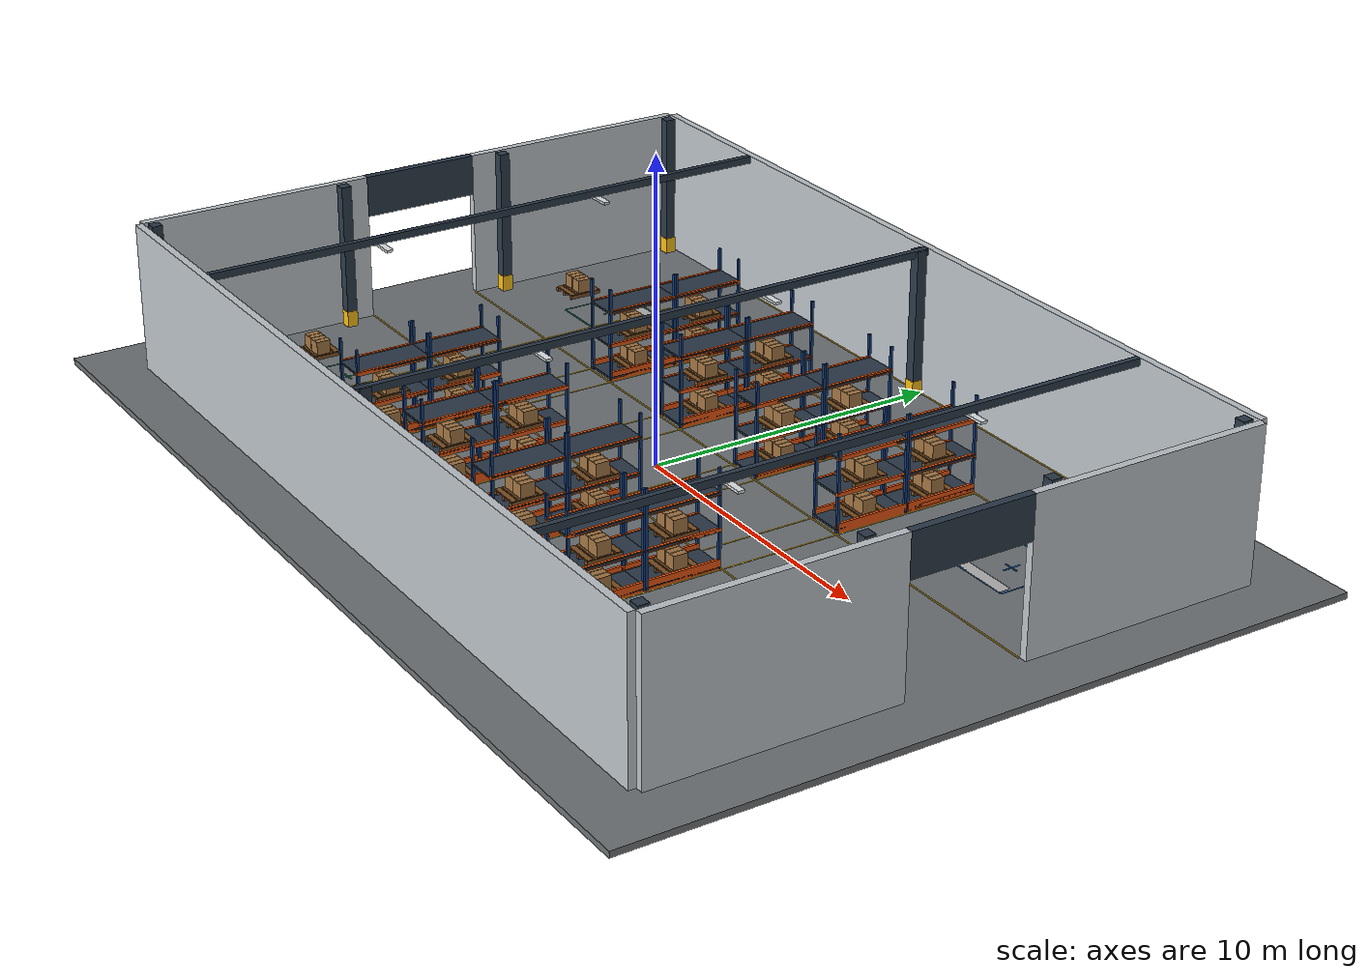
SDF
<?xml version="1.0"?>
<sdf version="1.9">
  <model name="wh_building">
    <static>true</static>
    <link name="structure">
      <visual name="floor_visual">
        <pose>0 0 -0.1 0 0 0</pose>
        <geometry>
          <box>
            <size>34 24 0.2</size>
          </box>
        </geometry>
        <material>
          <ambient>0.44 0.46 0.47 1</ambient>
          <diffuse>0.44 0.46 0.47 1</diffuse>
          <specular>0.06 0.06 0.06 1</specular>
        </material>
      </visual>
      <collision name="floor_collision">
        <pose>0 0 -0.1 0 0 0</pose>
        <geometry>
          <box>
            <size>34 24 0.2</size>
          </box>
        </geometry>
      </collision>
      <visual name="west_wall_0_visual">
        <pose>-15.125 -6 2.5 0 0 0</pose>
        <geometry>
          <box>
            <size>0.25 8 5</size>
          </box>
        </geometry>
        <material>
          <ambient>0.76 0.79 0.81 1</ambient>
          <diffuse>0.76 0.79 0.81 1</diffuse>
          <specular>0.06 0.06 0.06 1</specular>
        </material>
      </visual>
      <collision name="west_wall_0_collision">
        <pose>-15.125 -6 2.5 0 0 0</pose>
        <geometry>
          <box>
            <size>0.25 8 5</size>
          </box>
        </geometry>
      </collision>
      <visual name="receiving_door_lintel_visual">
        <pose>-15.125 0 4.3 0 0 0</pose>
        <geometry>
          <box>
            <size>0.25 4 1.4</size>
          </box>
        </geometry>
        <material>
          <ambient>0.17 0.23 0.29 1</ambient>
          <diffuse>0.17 0.23 0.29 1</diffuse>
          <specular>0.06 0.06 0.06 1</specular>
        </material>
      </visual>
      <collision name="receiving_door_lintel_collision">
        <pose>-15.125 0 4.3 0 0 0</pose>
        <geometry>
          <box>
            <size>0.25 4 1.4</size>
          </box>
        </geometry>
      </collision>
      <visual name="west_wall_1_visual">
        <pose>-15.125 6 2.5 0 0 0</pose>
        <geometry>
          <box>
            <size>0.25 8 5</size>
          </box>
        </geometry>
        <material>
          <ambient>0.76 0.79 0.81 1</ambient>
          <diffuse>0.76 0.79 0.81 1</diffuse>
          <specular>0.06 0.06 0.06 1</specular>
        </material>
      </visual>
      <collision name="west_wall_1_collision">
        <pose>-15.125 6 2.5 0 0 0</pose>
        <geometry>
          <box>
            <size>0.25 8 5</size>
          </box>
        </geometry>
      </collision>
      <visual name="east_wall_0_visual">
        <pose>15.125 -6 2.5 0 0 0</pose>
        <geometry>
          <box>
            <size>0.25 8 5</size>
          </box>
        </geometry>
        <material>
          <ambient>0.76 0.79 0.81 1</ambient>
          <diffuse>0.76 0.79 0.81 1</diffuse>
          <specular>0.06 0.06 0.06 1</specular>
        </material>
      </visual>
      <collision name="east_wall_0_collision">
        <pose>15.125 -6 2.5 0 0 0</pose>
        <geometry>
          <box>
            <size>0.25 8 5</size>
          </box>
        </geometry>
      </collision>
      <visual name="dispatch_door_lintel_visual">
        <pose>15.125 0 4.3 0 0 0</pose>
        <geometry>
          <box>
            <size>0.25 4 1.4</size>
          </box>
        </geometry>
        <material>
          <ambient>0.17 0.23 0.29 1</ambient>
          <diffuse>0.17 0.23 0.29 1</diffuse>
          <specular>0.06 0.06 0.06 1</specular>
        </material>
      </visual>
      <collision name="dispatch_door_lintel_collision">
        <pose>15.125 0 4.3 0 0 0</pose>
        <geometry>
          <box>
            <size>0.25 4 1.4</size>
          </box>
        </geometry>
      </collision>
      <visual name="east_wall_1_visual">
        <pose>15.125 6 2.5 0 0 0</pose>
        <geometry>
          <box>
            <size>0.25 8 5</size>
          </box>
        </geometry>
        <material>
          <ambient>0.76 0.79 0.81 1</ambient>
          <diffuse>0.76 0.79 0.81 1</diffuse>
          <specular>0.06 0.06 0.06 1</specular>
        </material>
      </visual>
      <collision name="east_wall_1_collision">
        <pose>15.125 6 2.5 0 0 0</pose>
        <geometry>
          <box>
            <size>0.25 8 5</size>
          </box>
        </geometry>
      </collision>
      <visual name="north_wall_0_visual">
        <pose>0 10.125 2.5 0 0 0</pose>
        <geometry>
          <box>
            <size>30 0.25 5</size>
          </box>
        </geometry>
        <material>
          <ambient>0.76 0.79 0.81 1</ambient>
          <diffuse>0.76 0.79 0.81 1</diffuse>
          <specular>0.06 0.06 0.06 1</specular>
        </material>
      </visual>
      <collision name="north_wall_0_collision">
        <pose>0 10.125 2.5 0 0 0</pose>
        <geometry>
          <box>
            <size>30 0.25 5</size>
          </box>
        </geometry>
      </collision>
      <visual name="south_wall_0_visual">
        <pose>0 -10.125 2.5 0 0 0</pose>
        <geometry>
          <box>
            <size>30 0.25 5</size>
          </box>
        </geometry>
        <material>
          <ambient>0.76 0.79 0.81 1</ambient>
          <diffuse>0.76 0.79 0.81 1</diffuse>
          <specular>0.06 0.06 0.06 1</specular>
        </material>
      </visual>
      <collision name="south_wall_0_collision">
        <pose>0 -10.125 2.5 0 0 0</pose>
        <geometry>
          <box>
            <size>30 0.25 5</size>
          </box>
        </geometry>
      </collision>
      <visual name="pillar_00_visual">
        <pose>-14.7 -9.7 2.5 0 0 0</pose>
        <geometry>
          <box>
            <size>0.35 0.35 5</size>
          </box>
        </geometry>
        <material>
          <ambient>0.17 0.23 0.29 1</ambient>
          <diffuse>0.17 0.23 0.29 1</diffuse>
          <specular>0.06 0.06 0.06 1</specular>
        </material>
      </visual>
      <collision name="pillar_00_collision">
        <pose>-14.7 -9.7 2.5 0 0 0</pose>
        <geometry>
          <box>
            <size>0.35 0.35 5</size>
          </box>
        </geometry>
      </collision>
      <visual name="pillar_guard_00_visual">
        <pose>-14.7 -9.7 0.275 0 0 0</pose>
        <geometry>
          <box>
            <size>0.365 0.365 0.55</size>
          </box>
        </geometry>
        <material>
          <ambient>1 0.76 0.08 1</ambient>
          <diffuse>1 0.76 0.08 1</diffuse>
          <specular>0.06 0.06 0.06 1</specular>
        </material>
      </visual>
      <visual name="pillar_01_visual">
        <pose>-14.7 -3 2.5 0 0 0</pose>
        <geometry>
          <box>
            <size>0.35 0.35 5</size>
          </box>
        </geometry>
        <material>
          <ambient>0.17 0.23 0.29 1</ambient>
          <diffuse>0.17 0.23 0.29 1</diffuse>
          <specular>0.06 0.06 0.06 1</specular>
        </material>
      </visual>
      <collision name="pillar_01_collision">
        <pose>-14.7 -3 2.5 0 0 0</pose>
        <geometry>
          <box>
            <size>0.35 0.35 5</size>
          </box>
        </geometry>
      </collision>
      <visual name="pillar_guard_01_visual">
        <pose>-14.7 -3 0.275 0 0 0</pose>
        <geometry>
          <box>
            <size>0.365 0.365 0.55</size>
          </box>
        </geometry>
        <material>
          <ambient>1 0.76 0.08 1</ambient>
          <diffuse>1 0.76 0.08 1</diffuse>
          <specular>0.06 0.06 0.06 1</specular>
        </material>
      </visual>
      <visual name="pillar_02_visual">
        <pose>-14.7 3 2.5 0 0 0</pose>
        <geometry>
          <box>
            <size>0.35 0.35 5</size>
          </box>
        </geometry>
        <material>
          <ambient>0.17 0.23 0.29 1</ambient>
          <diffuse>0.17 0.23 0.29 1</diffuse>
          <specular>0.06 0.06 0.06 1</specular>
        </material>
      </visual>
      <collision name="pillar_02_collision">
        <pose>-14.7 3 2.5 0 0 0</pose>
        <geometry>
          <box>
            <size>0.35 0.35 5</size>
          </box>
        </geometry>
      </collision>
      <visual name="pillar_guard_02_visual">
        <pose>-14.7 3 0.275 0 0 0</pose>
        <geometry>
          <box>
            <size>0.365 0.365 0.55</size>
          </box>
        </geometry>
        <material>
          <ambient>1 0.76 0.08 1</ambient>
          <diffuse>1 0.76 0.08 1</diffuse>
          <specular>0.06 0.06 0.06 1</specular>
        </material>
      </visual>
      <visual name="pillar_03_visual">
        <pose>-14.7 9.7 2.5 0 0 0</pose>
        <geometry>
          <box>
            <size>0.35 0.35 5</size>
          </box>
        </geometry>
        <material>
          <ambient>0.17 0.23 0.29 1</ambient>
          <diffuse>0.17 0.23 0.29 1</diffuse>
          <specular>0.06 0.06 0.06 1</specular>
        </material>
      </visual>
      <collision name="pillar_03_collision">
        <pose>-14.7 9.7 2.5 0 0 0</pose>
        <geometry>
          <box>
            <size>0.35 0.35 5</size>
          </box>
        </geometry>
      </collision>
      <visual name="pillar_guard_03_visual">
        <pose>-14.7 9.7 0.275 0 0 0</pose>
        <geometry>
          <box>
            <size>0.365 0.365 0.55</size>
          </box>
        </geometry>
        <material>
          <ambient>1 0.76 0.08 1</ambient>
          <diffuse>1 0.76 0.08 1</diffuse>
          <specular>0.06 0.06 0.06 1</specular>
        </material>
      </visual>
      <visual name="pillar_04_visual">
        <pose>0 -9.7 2.5 0 0 0</pose>
        <geometry>
          <box>
            <size>0.35 0.35 5</size>
          </box>
        </geometry>
        <material>
          <ambient>0.17 0.23 0.29 1</ambient>
          <diffuse>0.17 0.23 0.29 1</diffuse>
          <specular>0.06 0.06 0.06 1</specular>
        </material>
      </visual>
      <collision name="pillar_04_collision">
        <pose>0 -9.7 2.5 0 0 0</pose>
        <geometry>
          <box>
            <size>0.35 0.35 5</size>
          </box>
        </geometry>
      </collision>
      <visual name="pillar_guard_04_visual">
        <pose>0 -9.7 0.275 0 0 0</pose>
        <geometry>
          <box>
            <size>0.365 0.365 0.55</size>
          </box>
        </geometry>
        <material>
          <ambient>1 0.76 0.08 1</ambient>
          <diffuse>1 0.76 0.08 1</diffuse>
          <specular>0.06 0.06 0.06 1</specular>
        </material>
      </visual>
      <visual name="pillar_05_visual">
        <pose>0 9.7 2.5 0 0 0</pose>
        <geometry>
          <box>
            <size>0.35 0.35 5</size>
          </box>
        </geometry>
        <material>
          <ambient>0.17 0.23 0.29 1</ambient>
          <diffuse>0.17 0.23 0.29 1</diffuse>
          <specular>0.06 0.06 0.06 1</specular>
        </material>
      </visual>
      <collision name="pillar_05_collision">
        <pose>0 9.7 2.5 0 0 0</pose>
        <geometry>
          <box>
            <size>0.35 0.35 5</size>
          </box>
        </geometry>
      </collision>
      <visual name="pillar_guard_05_visual">
        <pose>0 9.7 0.275 0 0 0</pose>
        <geometry>
          <box>
            <size>0.365 0.365 0.55</size>
          </box>
        </geometry>
        <material>
          <ambient>1 0.76 0.08 1</ambient>
          <diffuse>1 0.76 0.08 1</diffuse>
          <specular>0.06 0.06 0.06 1</specular>
        </material>
      </visual>
      <visual name="pillar_06_visual">
        <pose>14.7 -9.7 2.5 0 0 0</pose>
        <geometry>
          <box>
            <size>0.35 0.35 5</size>
          </box>
        </geometry>
        <material>
          <ambient>0.17 0.23 0.29 1</ambient>
          <diffuse>0.17 0.23 0.29 1</diffuse>
          <specular>0.06 0.06 0.06 1</specular>
        </material>
      </visual>
      <collision name="pillar_06_collision">
        <pose>14.7 -9.7 2.5 0 0 0</pose>
        <geometry>
          <box>
            <size>0.35 0.35 5</size>
          </box>
        </geometry>
      </collision>
      <visual name="pillar_guard_06_visual">
        <pose>14.7 -9.7 0.275 0 0 0</pose>
        <geometry>
          <box>
            <size>0.365 0.365 0.55</size>
          </box>
        </geometry>
        <material>
          <ambient>1 0.76 0.08 1</ambient>
          <diffuse>1 0.76 0.08 1</diffuse>
          <specular>0.06 0.06 0.06 1</specular>
        </material>
      </visual>
      <visual name="pillar_07_visual">
        <pose>14.7 -3 2.5 0 0 0</pose>
        <geometry>
          <box>
            <size>0.35 0.35 5</size>
          </box>
        </geometry>
        <material>
          <ambient>0.17 0.23 0.29 1</ambient>
          <diffuse>0.17 0.23 0.29 1</diffuse>
          <specular>0.06 0.06 0.06 1</specular>
        </material>
      </visual>
      <collision name="pillar_07_collision">
        <pose>14.7 -3 2.5 0 0 0</pose>
        <geometry>
          <box>
            <size>0.35 0.35 5</size>
          </box>
        </geometry>
      </collision>
      <visual name="pillar_guard_07_visual">
        <pose>14.7 -3 0.275 0 0 0</pose>
        <geometry>
          <box>
            <size>0.365 0.365 0.55</size>
          </box>
        </geometry>
        <material>
          <ambient>1 0.76 0.08 1</ambient>
          <diffuse>1 0.76 0.08 1</diffuse>
          <specular>0.06 0.06 0.06 1</specular>
        </material>
      </visual>
      <visual name="pillar_08_visual">
        <pose>14.7 3 2.5 0 0 0</pose>
        <geometry>
          <box>
            <size>0.35 0.35 5</size>
          </box>
        </geometry>
        <material>
          <ambient>0.17 0.23 0.29 1</ambient>
          <diffuse>0.17 0.23 0.29 1</diffuse>
          <specular>0.06 0.06 0.06 1</specular>
        </material>
      </visual>
      <collision name="pillar_08_collision">
        <pose>14.7 3 2.5 0 0 0</pose>
        <geometry>
          <box>
            <size>0.35 0.35 5</size>
          </box>
        </geometry>
      </collision>
      <visual name="pillar_guard_08_visual">
        <pose>14.7 3 0.275 0 0 0</pose>
        <geometry>
          <box>
            <size>0.365 0.365 0.55</size>
          </box>
        </geometry>
        <material>
          <ambient>1 0.76 0.08 1</ambient>
          <diffuse>1 0.76 0.08 1</diffuse>
          <specular>0.06 0.06 0.06 1</specular>
        </material>
      </visual>
      <visual name="pillar_09_visual">
        <pose>14.7 9.7 2.5 0 0 0</pose>
        <geometry>
          <box>
            <size>0.35 0.35 5</size>
          </box>
        </geometry>
        <material>
          <ambient>0.17 0.23 0.29 1</ambient>
          <diffuse>0.17 0.23 0.29 1</diffuse>
          <specular>0.06 0.06 0.06 1</specular>
        </material>
      </visual>
      <collision name="pillar_09_collision">
        <pose>14.7 9.7 2.5 0 0 0</pose>
        <geometry>
          <box>
            <size>0.35 0.35 5</size>
          </box>
        </geometry>
      </collision>
      <visual name="pillar_guard_09_visual">
        <pose>14.7 9.7 0.275 0 0 0</pose>
        <geometry>
          <box>
            <size>0.365 0.365 0.55</size>
          </box>
        </geometry>
        <material>
          <ambient>1 0.76 0.08 1</ambient>
          <diffuse>1 0.76 0.08 1</diffuse>
          <specular>0.06 0.06 0.06 1</specular>
        </material>
      </visual>
      <visual name="roof_beam_0_visual">
        <pose>-10 0 4.88 0 0 0</pose>
        <geometry>
          <box>
            <size>0.18 20 0.24</size>
          </box>
        </geometry>
        <material>
          <ambient>0.17 0.23 0.29 1</ambient>
          <diffuse>0.17 0.23 0.29 1</diffuse>
          <specular>0.06 0.06 0.06 1</specular>
        </material>
      </visual>
      <collision name="roof_beam_0_collision">
        <pose>-10 0 4.88 0 0 0</pose>
        <geometry>
          <box>
            <size>0.18 20 0.24</size>
          </box>
        </geometry>
      </collision>
      <visual name="roof_beam_1_visual">
        <pose>0 0 4.88 0 0 0</pose>
        <geometry>
          <box>
            <size>0.18 20 0.24</size>
          </box>
        </geometry>
        <material>
          <ambient>0.17 0.23 0.29 1</ambient>
          <diffuse>0.17 0.23 0.29 1</diffuse>
          <specular>0.06 0.06 0.06 1</specular>
        </material>
      </visual>
      <collision name="roof_beam_1_collision">
        <pose>0 0 4.88 0 0 0</pose>
        <geometry>
          <box>
            <size>0.18 20 0.24</size>
          </box>
        </geometry>
      </collision>
      <visual name="roof_beam_2_visual">
        <pose>10 0 4.88 0 0 0</pose>
        <geometry>
          <box>
            <size>0.18 20 0.24</size>
          </box>
        </geometry>
        <material>
          <ambient>0.17 0.23 0.29 1</ambient>
          <diffuse>0.17 0.23 0.29 1</diffuse>
          <specular>0.06 0.06 0.06 1</specular>
        </material>
      </visual>
      <collision name="roof_beam_2_collision">
        <pose>10 0 4.88 0 0 0</pose>
        <geometry>
          <box>
            <size>0.18 20 0.24</size>
          </box>
        </geometry>
      </collision>
      <visual name="aisle_0_-1_visual">
        <pose>0 -1.975 0.0015 0 0 0</pose>
        <geometry>
          <box>
            <size>30 0.05 0.003</size>
          </box>
        </geometry>
        <material>
          <ambient>1 0.76 0.08 1</ambient>
          <diffuse>1 0.76 0.08 1</diffuse>
          <specular>0.06 0.06 0.06 1</specular>
        </material>
      </visual>
      <visual name="aisle_0_1_visual">
        <pose>0 1.975 0.0015 0 0 0</pose>
        <geometry>
          <box>
            <size>30 0.05 0.003</size>
          </box>
        </geometry>
        <material>
          <ambient>1 0.76 0.08 1</ambient>
          <diffuse>1 0.76 0.08 1</diffuse>
          <specular>0.06 0.06 0.06 1</specular>
        </material>
      </visual>
      <visual name="aisle_1_-1_visual">
        <pose>0 7.025 0.0015 0 0 0</pose>
        <geometry>
          <box>
            <size>20 0.05 0.003</size>
          </box>
        </geometry>
        <material>
          <ambient>1 0.76 0.08 1</ambient>
          <diffuse>1 0.76 0.08 1</diffuse>
          <specular>0.06 0.06 0.06 1</specular>
        </material>
      </visual>
      <visual name="aisle_1_1_visual">
        <pose>0 9.975 0.0015 0 0 0</pose>
        <geometry>
          <box>
            <size>20 0.05 0.003</size>
          </box>
        </geometry>
        <material>
          <ambient>1 0.76 0.08 1</ambient>
          <diffuse>1 0.76 0.08 1</diffuse>
          <specular>0.06 0.06 0.06 1</specular>
        </material>
      </visual>
      <visual name="aisle_2_-1_visual">
        <pose>0 -9.975 0.0015 0 0 0</pose>
        <geometry>
          <box>
            <size>20 0.05 0.003</size>
          </box>
        </geometry>
        <material>
          <ambient>1 0.76 0.08 1</ambient>
          <diffuse>1 0.76 0.08 1</diffuse>
          <specular>0.06 0.06 0.06 1</specular>
        </material>
      </visual>
      <visual name="aisle_2_1_visual">
        <pose>0 -7.025 0.0015 0 0 0</pose>
        <geometry>
          <box>
            <size>20 0.05 0.003</size>
          </box>
        </geometry>
        <material>
          <ambient>1 0.76 0.08 1</ambient>
          <diffuse>1 0.76 0.08 1</diffuse>
          <specular>0.06 0.06 0.06 1</specular>
        </material>
      </visual>
      <visual name="aisle_3_-1_visual">
        <pose>-5.975 0 0.0015 0 0 0</pose>
        <geometry>
          <box>
            <size>0.05 14 0.003</size>
          </box>
        </geometry>
        <material>
          <ambient>1 0.76 0.08 1</ambient>
          <diffuse>1 0.76 0.08 1</diffuse>
          <specular>0.06 0.06 0.06 1</specular>
        </material>
      </visual>
      <visual name="aisle_3_1_visual">
        <pose>-3.025 0 0.0015 0 0 0</pose>
        <geometry>
          <box>
            <size>0.05 14 0.003</size>
          </box>
        </geometry>
        <material>
          <ambient>1 0.76 0.08 1</ambient>
          <diffuse>1 0.76 0.08 1</diffuse>
          <specular>0.06 0.06 0.06 1</specular>
        </material>
      </visual>
      <visual name="aisle_4_-1_visual">
        <pose>-1.775 0 0.0015 0 0 0</pose>
        <geometry>
          <box>
            <size>0.05 14 0.003</size>
          </box>
        </geometry>
        <material>
          <ambient>1 0.76 0.08 1</ambient>
          <diffuse>1 0.76 0.08 1</diffuse>
          <specular>0.06 0.06 0.06 1</specular>
        </material>
      </visual>
      <visual name="aisle_4_1_visual">
        <pose>1.175 0 0.0015 0 0 0</pose>
        <geometry>
          <box>
            <size>0.05 14 0.003</size>
          </box>
        </geometry>
        <material>
          <ambient>1 0.76 0.08 1</ambient>
          <diffuse>1 0.76 0.08 1</diffuse>
          <specular>0.06 0.06 0.06 1</specular>
        </material>
      </visual>
      <visual name="aisle_5_-1_visual">
        <pose>2.425 0 0.0015 0 0 0</pose>
        <geometry>
          <box>
            <size>0.05 14 0.003</size>
          </box>
        </geometry>
        <material>
          <ambient>1 0.76 0.08 1</ambient>
          <diffuse>1 0.76 0.08 1</diffuse>
          <specular>0.06 0.06 0.06 1</specular>
        </material>
      </visual>
      <visual name="aisle_5_1_visual">
        <pose>5.375 0 0.0015 0 0 0</pose>
        <geometry>
          <box>
            <size>0.05 14 0.003</size>
          </box>
        </geometry>
        <material>
          <ambient>1 0.76 0.08 1</ambient>
          <diffuse>1 0.76 0.08 1</diffuse>
          <specular>0.06 0.06 0.06 1</specular>
        </material>
      </visual>
      <visual name="aisle_6_-1_visual">
        <pose>-10.175 0 0.0015 0 0 0</pose>
        <geometry>
          <box>
            <size>0.05 14 0.003</size>
          </box>
        </geometry>
        <material>
          <ambient>1 0.76 0.08 1</ambient>
          <diffuse>1 0.76 0.08 1</diffuse>
          <specular>0.06 0.06 0.06 1</specular>
        </material>
      </visual>
      <visual name="aisle_6_1_visual">
        <pose>-7.225 0 0.0015 0 0 0</pose>
        <geometry>
          <box>
            <size>0.05 14 0.003</size>
          </box>
        </geometry>
        <material>
          <ambient>1 0.76 0.08 1</ambient>
          <diffuse>1 0.76 0.08 1</diffuse>
          <specular>0.06 0.06 0.06 1</specular>
        </material>
      </visual>
      <visual name="aisle_7_-1_visual">
        <pose>6.625 0 0.0015 0 0 0</pose>
        <geometry>
          <box>
            <size>0.05 14 0.003</size>
          </box>
        </geometry>
        <material>
          <ambient>1 0.76 0.08 1</ambient>
          <diffuse>1 0.76 0.08 1</diffuse>
          <specular>0.06 0.06 0.06 1</specular>
        </material>
      </visual>
      <visual name="aisle_7_1_visual">
        <pose>9.575 0 0.0015 0 0 0</pose>
        <geometry>
          <box>
            <size>0.05 14 0.003</size>
          </box>
        </geometry>
        <material>
          <ambient>1 0.76 0.08 1</ambient>
          <diffuse>1 0.76 0.08 1</diffuse>
          <specular>0.06 0.06 0.06 1</specular>
        </material>
      </visual>
      <sensor name="south_wall_contact" type="contact">
        <always_on>true</always_on>
        <update_rate>20</update_rate>
        <topic>/warehouse/contacts/wall</topic>
        <contact>
          <collision>south_wall_0_collision</collision>
          <topic>/warehouse/contacts/wall</topic>
        </contact>
      </sensor>
      <visual name="charger_visual">
        <pose>11.7 9.55 0.45 0 0 0</pose>
        <geometry>
          <box>
            <size>0.9 0.35 0.9</size>
          </box>
        </geometry>
        <material>
          <ambient>0.45 0.2 0.65 1</ambient>
          <diffuse>0.45 0.2 0.65 1</diffuse>
          <specular>0.06 0.06 0.06 1</specular>
        </material>
      </visual>
      <collision name="charger_collision">
        <pose>11.7 9.55 0.45 0 0 0</pose>
        <geometry>
          <box>
            <size>0.9 0.35 0.9</size>
          </box>
        </geometry>
      </collision>
      <visual name="luminaire_0_visual">
        <pose>-10 -4 4.65 0 0 0</pose>
        <geometry>
          <box>
            <size>1.1 0.22 0.08</size>
          </box>
        </geometry>
        <material>
          <ambient>0.91 0.93 0.94 1</ambient>
          <diffuse>0.91 0.93 0.94 1</diffuse>
          <specular>0.06 0.06 0.06 1</specular>
        </material>
      </visual>
      <visual name="luminaire_1_visual">
        <pose>0 -4 4.65 0 0 0</pose>
        <geometry>
          <box>
            <size>1.1 0.22 0.08</size>
          </box>
        </geometry>
        <material>
          <ambient>0.91 0.93 0.94 1</ambient>
          <diffuse>0.91 0.93 0.94 1</diffuse>
          <specular>0.06 0.06 0.06 1</specular>
        </material>
      </visual>
      <visual name="luminaire_2_visual">
        <pose>10 -4 4.65 0 0 0</pose>
        <geometry>
          <box>
            <size>1.1 0.22 0.08</size>
          </box>
        </geometry>
        <material>
          <ambient>0.91 0.93 0.94 1</ambient>
          <diffuse>0.91 0.93 0.94 1</diffuse>
          <specular>0.06 0.06 0.06 1</specular>
        </material>
      </visual>
      <visual name="luminaire_3_visual">
        <pose>-10 4 4.65 0 0 0</pose>
        <geometry>
          <box>
            <size>1.1 0.22 0.08</size>
          </box>
        </geometry>
        <material>
          <ambient>0.91 0.93 0.94 1</ambient>
          <diffuse>0.91 0.93 0.94 1</diffuse>
          <specular>0.06 0.06 0.06 1</specular>
        </material>
      </visual>
      <visual name="luminaire_4_visual">
        <pose>0 4 4.65 0 0 0</pose>
        <geometry>
          <box>
            <size>1.1 0.22 0.08</size>
          </box>
        </geometry>
        <material>
          <ambient>0.91 0.93 0.94 1</ambient>
          <diffuse>0.91 0.93 0.94 1</diffuse>
          <specular>0.06 0.06 0.06 1</specular>
        </material>
      </visual>
      <visual name="luminaire_5_visual">
        <pose>10 4 4.65 0 0 0</pose>
        <geometry>
          <box>
            <size>1.1 0.22 0.08</size>
          </box>
        </geometry>
        <material>
          <ambient>0.91 0.93 0.94 1</ambient>
          <diffuse>0.91 0.93 0.94 1</diffuse>
          <specular>0.06 0.06 0.06 1</specular>
        </material>
      </visual>
    </link>
    <include>
      <uri>model://wh_rack</uri>
      <name>rack_01_01</name>
      <pose>-6.6 -5.75 0 0 0 0</pose>
    </include>
    <include>
      <uri>model://wh_rack</uri>
      <name>rack_01_02</name>
      <pose>-6.6 -3.25 0 0 0 0</pose>
    </include>
    <include>
      <uri>model://wh_rack</uri>
      <name>rack_01_03</name>
      <pose>-6.6 3.25 0 0 0 0</pose>
    </include>
    <include>
      <uri>model://wh_rack</uri>
      <name>rack_01_04</name>
      <pose>-6.6 5.75 0 0 0 0</pose>
    </include>
    <include>
      <uri>model://wh_rack</uri>
      <name>rack_02_01</name>
      <pose>-2.4 -5.75 0 0 0 0</pose>
    </include>
    <include>
      <uri>model://wh_rack</uri>
      <name>rack_02_02</name>
      <pose>-2.4 -3.25 0 0 0 0</pose>
    </include>
    <include>
      <uri>model://wh_rack</uri>
      <name>rack_02_03</name>
      <pose>-2.4 3.25 0 0 0 0</pose>
    </include>
    <include>
      <uri>model://wh_rack</uri>
      <name>rack_02_04</name>
      <pose>-2.4 5.75 0 0 0 0</pose>
    </include>
    <include>
      <uri>model://wh_rack</uri>
      <name>rack_03_01</name>
      <pose>1.8 -5.75 0 0 0 0</pose>
    </include>
    <include>
      <uri>model://wh_rack</uri>
      <name>rack_03_02</name>
      <pose>1.8 -3.25 0 0 0 0</pose>
    </include>
    <include>
      <uri>model://wh_rack</uri>
      <name>rack_03_03</name>
      <pose>1.8 3.25 0 0 0 0</pose>
    </include>
    <include>
      <uri>model://wh_rack</uri>
      <name>rack_03_04</name>
      <pose>1.8 5.75 0 0 0 0</pose>
    </include>
    <include>
      <uri>model://wh_rack</uri>
      <name>rack_04_01</name>
      <pose>6 -5.75 0 0 0 0</pose>
    </include>
    <include>
      <uri>model://wh_rack</uri>
      <name>rack_04_02</name>
      <pose>6 -3.25 0 0 0 0</pose>
    </include>
    <include>
      <uri>model://wh_rack</uri>
      <name>rack_04_03</name>
      <pose>6 3.25 0 0 0 0</pose>
    </include>
    <include>
      <uri>model://wh_rack</uri>
      <name>rack_04_04</name>
      <pose>6 5.75 0 0 0 0</pose>
    </include>
    <include>
      <uri>model://wh_loaded_pallet</uri>
      <name>pickup_load_01</name>
      <pose>-13.1 -5 0 0 0 0</pose>
    </include>
    <include>
      <uri>model://wh_loaded_pallet</uri>
      <name>pickup_load_02</name>
      <pose>-13.1 5 0 0 0 0</pose>
    </include>
    <include>
      <uri>model://wh_loaded_pallet</uri>
      <name>dropoff_load_01</name>
      <pose>13.1 -5 0 0 0 0</pose>
    </include>
    <include>
      <uri>model://wh_loaded_pallet</uri>
      <name>dropoff_load_02</name>
      <pose>13.1 5 0 0 0 0</pose>
    </include>
    <include>
      <uri>model://wh_loaded_pallet</uri>
      <name>staging_load_01</name>
      <pose>-13.4 -8.3 0 0 0 0</pose>
    </include>
    <include>
      <uri>model://wh_loaded_pallet</uri>
      <name>staging_load_02</name>
      <pose>-11.8 -8.3 0 0 0 0</pose>
    </include>
    <model name="pickup_station_01">
      <static>true</static>
      <pose>-10.9 -5 0 0 0 3.14159265359</pose>
      <link name="markings">
        <visual name="edge_x_-1_visual">
          <pose>-1.05 0 0.0015 0 0 0</pose>
          <geometry>
            <box>
              <size>0.05 2.4 0.003</size>
            </box>
          </geometry>
          <material>
            <ambient>0.05 0.55 0.4 1</ambient>
            <diffuse>0.05 0.55 0.4 1</diffuse>
            <specular>0.06 0.06 0.06 1</specular>
          </material>
        </visual>
        <visual name="edge_y_-1_visual">
          <pose>0 -1.2 0.0015 0 0 0</pose>
          <geometry>
            <box>
              <size>2.1 0.05 0.003</size>
            </box>
          </geometry>
          <material>
            <ambient>0.05 0.55 0.4 1</ambient>
            <diffuse>0.05 0.55 0.4 1</diffuse>
            <specular>0.06 0.06 0.06 1</specular>
          </material>
        </visual>
        <visual name="edge_x_1_visual">
          <pose>1.05 0 0.0015 0 0 0</pose>
          <geometry>
            <box>
              <size>0.05 2.4 0.003</size>
            </box>
          </geometry>
          <material>
            <ambient>0.05 0.55 0.4 1</ambient>
            <diffuse>0.05 0.55 0.4 1</diffuse>
            <specular>0.06 0.06 0.06 1</specular>
          </material>
        </visual>
        <visual name="edge_y_1_visual">
          <pose>0 1.2 0.0015 0 0 0</pose>
          <geometry>
            <box>
              <size>2.1 0.05 0.003</size>
            </box>
          </geometry>
          <material>
            <ambient>0.05 0.55 0.4 1</ambient>
            <diffuse>0.05 0.55 0.4 1</diffuse>
            <specular>0.06 0.06 0.06 1</specular>
          </material>
        </visual>
        <visual name="target_x_visual">
          <pose>0 0 0.0015 0 0 0</pose>
          <geometry>
            <box>
              <size>0.525 0.05 0.003</size>
            </box>
          </geometry>
          <material>
            <ambient>0.05 0.55 0.4 1</ambient>
            <diffuse>0.05 0.55 0.4 1</diffuse>
            <specular>0.06 0.06 0.06 1</specular>
          </material>
        </visual>
        <visual name="target_y_visual">
          <pose>0 0 0.0015 0 0 0</pose>
          <geometry>
            <box>
              <size>0.05 0.6 0.003</size>
            </box>
          </geometry>
          <material>
            <ambient>0.05 0.55 0.4 1</ambient>
            <diffuse>0.05 0.55 0.4 1</diffuse>
            <specular>0.06 0.06 0.06 1</specular>
          </material>
        </visual>
        <visual name="pickup_station_01_visual">
          <pose>0 -1 0.003 0 0 0</pose>
          <geometry>
            <mesh>
              <uri>model://wh_signs/meshes/pickup_station_01.dae</uri>
            </mesh>
          </geometry>
        </visual>
      </link>
    </model>
    <model name="pickup_station_02">
      <static>true</static>
      <pose>-10.9 5 0 0 0 3.14159265359</pose>
      <link name="markings">
        <visual name="edge_x_-1_visual">
          <pose>-1.05 0 0.0015 0 0 0</pose>
          <geometry>
            <box>
              <size>0.05 2.4 0.003</size>
            </box>
          </geometry>
          <material>
            <ambient>0.05 0.55 0.4 1</ambient>
            <diffuse>0.05 0.55 0.4 1</diffuse>
            <specular>0.06 0.06 0.06 1</specular>
          </material>
        </visual>
        <visual name="edge_y_-1_visual">
          <pose>0 -1.2 0.0015 0 0 0</pose>
          <geometry>
            <box>
              <size>2.1 0.05 0.003</size>
            </box>
          </geometry>
          <material>
            <ambient>0.05 0.55 0.4 1</ambient>
            <diffuse>0.05 0.55 0.4 1</diffuse>
            <specular>0.06 0.06 0.06 1</specular>
          </material>
        </visual>
        <visual name="edge_x_1_visual">
          <pose>1.05 0 0.0015 0 0 0</pose>
          <geometry>
            <box>
              <size>0.05 2.4 0.003</size>
            </box>
          </geometry>
          <material>
            <ambient>0.05 0.55 0.4 1</ambient>
            <diffuse>0.05 0.55 0.4 1</diffuse>
            <specular>0.06 0.06 0.06 1</specular>
          </material>
        </visual>
        <visual name="edge_y_1_visual">
          <pose>0 1.2 0.0015 0 0 0</pose>
          <geometry>
            <box>
              <size>2.1 0.05 0.003</size>
            </box>
          </geometry>
          <material>
            <ambient>0.05 0.55 0.4 1</ambient>
            <diffuse>0.05 0.55 0.4 1</diffuse>
            <specular>0.06 0.06 0.06 1</specular>
          </material>
        </visual>
        <visual name="target_x_visual">
          <pose>0 0 0.0015 0 0 0</pose>
          <geometry>
            <box>
              <size>0.525 0.05 0.003</size>
            </box>
          </geometry>
          <material>
            <ambient>0.05 0.55 0.4 1</ambient>
            <diffuse>0.05 0.55 0.4 1</diffuse>
            <specular>0.06 0.06 0.06 1</specular>
          </material>
        </visual>
        <visual name="target_y_visual">
          <pose>0 0 0.0015 0 0 0</pose>
          <geometry>
            <box>
              <size>0.05 0.6 0.003</size>
            </box>
          </geometry>
          <material>
            <ambient>0.05 0.55 0.4 1</ambient>
            <diffuse>0.05 0.55 0.4 1</diffuse>
            <specular>0.06 0.06 0.06 1</specular>
          </material>
        </visual>
        <visual name="pickup_station_02_visual">
          <pose>0 -1 0.003 0 0 0</pose>
          <geometry>
            <mesh>
              <uri>model://wh_signs/meshes/pickup_station_02.dae</uri>
            </mesh>
          </geometry>
        </visual>
      </link>
    </model>
    <model name="dropoff_station_01">
      <static>true</static>
      <pose>10.9 -5 0 0 0 0</pose>
      <link name="markings">
        <visual name="edge_x_-1_visual">
          <pose>-1.05 0 0.0015 0 0 0</pose>
          <geometry>
            <box>
              <size>0.05 2.4 0.003</size>
            </box>
          </geometry>
          <material>
            <ambient>0.08 0.38 0.75 1</ambient>
            <diffuse>0.08 0.38 0.75 1</diffuse>
            <specular>0.06 0.06 0.06 1</specular>
          </material>
        </visual>
        <visual name="edge_y_-1_visual">
          <pose>0 -1.2 0.0015 0 0 0</pose>
          <geometry>
            <box>
              <size>2.1 0.05 0.003</size>
            </box>
          </geometry>
          <material>
            <ambient>0.08 0.38 0.75 1</ambient>
            <diffuse>0.08 0.38 0.75 1</diffuse>
            <specular>0.06 0.06 0.06 1</specular>
          </material>
        </visual>
        <visual name="edge_x_1_visual">
          <pose>1.05 0 0.0015 0 0 0</pose>
          <geometry>
            <box>
              <size>0.05 2.4 0.003</size>
            </box>
          </geometry>
          <material>
            <ambient>0.08 0.38 0.75 1</ambient>
            <diffuse>0.08 0.38 0.75 1</diffuse>
            <specular>0.06 0.06 0.06 1</specular>
          </material>
        </visual>
        <visual name="edge_y_1_visual">
          <pose>0 1.2 0.0015 0 0 0</pose>
          <geometry>
            <box>
              <size>2.1 0.05 0.003</size>
            </box>
          </geometry>
          <material>
            <ambient>0.08 0.38 0.75 1</ambient>
            <diffuse>0.08 0.38 0.75 1</diffuse>
            <specular>0.06 0.06 0.06 1</specular>
          </material>
        </visual>
        <visual name="target_x_visual">
          <pose>0 0 0.0015 0 0 0</pose>
          <geometry>
            <box>
              <size>0.525 0.05 0.003</size>
            </box>
          </geometry>
          <material>
            <ambient>0.08 0.38 0.75 1</ambient>
            <diffuse>0.08 0.38 0.75 1</diffuse>
            <specular>0.06 0.06 0.06 1</specular>
          </material>
        </visual>
        <visual name="target_y_visual">
          <pose>0 0 0.0015 0 0 0</pose>
          <geometry>
            <box>
              <size>0.05 0.6 0.003</size>
            </box>
          </geometry>
          <material>
            <ambient>0.08 0.38 0.75 1</ambient>
            <diffuse>0.08 0.38 0.75 1</diffuse>
            <specular>0.06 0.06 0.06 1</specular>
          </material>
        </visual>
        <visual name="dropoff_station_01_visual">
          <pose>0 -1 0.003 0 0 0</pose>
          <geometry>
            <mesh>
              <uri>model://wh_signs/meshes/dropoff_station_01.dae</uri>
            </mesh>
          </geometry>
        </visual>
      </link>
    </model>
    <model name="dropoff_station_02">
      <static>true</static>
      <pose>10.9 5 0 0 0 0</pose>
      <link name="markings">
        <visual name="edge_x_-1_visual">
          <pose>-1.05 0 0.0015 0 0 0</pose>
          <geometry>
            <box>
              <size>0.05 2.4 0.003</size>
            </box>
          </geometry>
          <material>
            <ambient>0.08 0.38 0.75 1</ambient>
            <diffuse>0.08 0.38 0.75 1</diffuse>
            <specular>0.06 0.06 0.06 1</specular>
          </material>
        </visual>
        <visual name="edge_y_-1_visual">
          <pose>0 -1.2 0.0015 0 0 0</pose>
          <geometry>
            <box>
              <size>2.1 0.05 0.003</size>
            </box>
          </geometry>
          <material>
            <ambient>0.08 0.38 0.75 1</ambient>
            <diffuse>0.08 0.38 0.75 1</diffuse>
            <specular>0.06 0.06 0.06 1</specular>
          </material>
        </visual>
        <visual name="edge_x_1_visual">
          <pose>1.05 0 0.0015 0 0 0</pose>
          <geometry>
            <box>
              <size>0.05 2.4 0.003</size>
            </box>
          </geometry>
          <material>
            <ambient>0.08 0.38 0.75 1</ambient>
            <diffuse>0.08 0.38 0.75 1</diffuse>
            <specular>0.06 0.06 0.06 1</specular>
          </material>
        </visual>
        <visual name="edge_y_1_visual">
          <pose>0 1.2 0.0015 0 0 0</pose>
          <geometry>
            <box>
              <size>2.1 0.05 0.003</size>
            </box>
          </geometry>
          <material>
            <ambient>0.08 0.38 0.75 1</ambient>
            <diffuse>0.08 0.38 0.75 1</diffuse>
            <specular>0.06 0.06 0.06 1</specular>
          </material>
        </visual>
        <visual name="target_x_visual">
          <pose>0 0 0.0015 0 0 0</pose>
          <geometry>
            <box>
              <size>0.525 0.05 0.003</size>
            </box>
          </geometry>
          <material>
            <ambient>0.08 0.38 0.75 1</ambient>
            <diffuse>0.08 0.38 0.75 1</diffuse>
            <specular>0.06 0.06 0.06 1</specular>
          </material>
        </visual>
        <visual name="target_y_visual">
          <pose>0 0 0.0015 0 0 0</pose>
          <geometry>
            <box>
              <size>0.05 0.6 0.003</size>
            </box>
          </geometry>
          <material>
            <ambient>0.08 0.38 0.75 1</ambient>
            <diffuse>0.08 0.38 0.75 1</diffuse>
            <specular>0.06 0.06 0.06 1</specular>
          </material>
        </visual>
        <visual name="dropoff_station_02_visual">
          <pose>0 -1 0.003 0 0 0</pose>
          <geometry>
            <mesh>
              <uri>model://wh_signs/meshes/dropoff_station_02.dae</uri>
            </mesh>
          </geometry>
        </visual>
      </link>
    </model>
    <model name="charging_station">
      <static>true</static>
      <pose>11.7 8.2 0 0 0 1.57079632679</pose>
      <link name="markings">
        <visual name="edge_x_-1_visual">
          <pose>-1.3 0 0.0015 0 0 0</pose>
          <geometry>
            <box>
              <size>0.05 2.2 0.003</size>
            </box>
          </geometry>
          <material>
            <ambient>0.45 0.2 0.65 1</ambient>
            <diffuse>0.45 0.2 0.65 1</diffuse>
            <specular>0.06 0.06 0.06 1</specular>
          </material>
        </visual>
        <visual name="edge_y_-1_visual">
          <pose>0 -1.1 0.0015 0 0 0</pose>
          <geometry>
            <box>
              <size>2.6 0.05 0.003</size>
            </box>
          </geometry>
          <material>
            <ambient>0.45 0.2 0.65 1</ambient>
            <diffuse>0.45 0.2 0.65 1</diffuse>
            <specular>0.06 0.06 0.06 1</specular>
          </material>
        </visual>
        <visual name="edge_x_1_visual">
          <pose>1.3 0 0.0015 0 0 0</pose>
          <geometry>
            <box>
              <size>0.05 2.2 0.003</size>
            </box>
          </geometry>
          <material>
            <ambient>0.45 0.2 0.65 1</ambient>
            <diffuse>0.45 0.2 0.65 1</diffuse>
            <specular>0.06 0.06 0.06 1</specular>
          </material>
        </visual>
        <visual name="edge_y_1_visual">
          <pose>0 1.1 0.0015 0 0 0</pose>
          <geometry>
            <box>
              <size>2.6 0.05 0.003</size>
            </box>
          </geometry>
          <material>
            <ambient>0.45 0.2 0.65 1</ambient>
            <diffuse>0.45 0.2 0.65 1</diffuse>
            <specular>0.06 0.06 0.06 1</specular>
          </material>
        </visual>
        <visual name="target_x_visual">
          <pose>0 0 0.0015 0 0 0</pose>
          <geometry>
            <box>
              <size>0.65 0.05 0.003</size>
            </box>
          </geometry>
          <material>
            <ambient>0.45 0.2 0.65 1</ambient>
            <diffuse>0.45 0.2 0.65 1</diffuse>
            <specular>0.06 0.06 0.06 1</specular>
          </material>
        </visual>
        <visual name="target_y_visual">
          <pose>0 0 0.0015 0 0 0</pose>
          <geometry>
            <box>
              <size>0.05 0.55 0.003</size>
            </box>
          </geometry>
          <material>
            <ambient>0.45 0.2 0.65 1</ambient>
            <diffuse>0.45 0.2 0.65 1</diffuse>
            <specular>0.06 0.06 0.06 1</specular>
          </material>
        </visual>
        <visual name="charging_station_visual">
          <pose>0 -0.9 0.003 0 0 0</pose>
          <geometry>
            <mesh>
              <uri>model://wh_signs/meshes/charging_station.dae</uri>
            </mesh>
          </geometry>
        </visual>
      </link>
    </model>
    <model name="staging_area">
      <static>true</static>
      <pose>-12.4 -8.3 0 0 0 0</pose>
      <link name="markings">
        <visual name="edge_x_-1_visual">
          <pose>-2.15 0 0.0015 0 0 0</pose>
          <geometry>
            <box>
              <size>0.05 2.6 0.003</size>
            </box>
          </geometry>
          <material>
            <ambient>0.75 0.48 0.06 1</ambient>
            <diffuse>0.75 0.48 0.06 1</diffuse>
            <specular>0.06 0.06 0.06 1</specular>
          </material>
        </visual>
        <visual name="edge_y_-1_visual">
          <pose>0 -1.3 0.0015 0 0 0</pose>
          <geometry>
            <box>
              <size>4.3 0.05 0.003</size>
            </box>
          </geometry>
          <material>
            <ambient>0.75 0.48 0.06 1</ambient>
            <diffuse>0.75 0.48 0.06 1</diffuse>
            <specular>0.06 0.06 0.06 1</specular>
          </material>
        </visual>
        <visual name="edge_x_1_visual">
          <pose>2.15 0 0.0015 0 0 0</pose>
          <geometry>
            <box>
              <size>0.05 2.6 0.003</size>
            </box>
          </geometry>
          <material>
            <ambient>0.75 0.48 0.06 1</ambient>
            <diffuse>0.75 0.48 0.06 1</diffuse>
            <specular>0.06 0.06 0.06 1</specular>
          </material>
        </visual>
        <visual name="edge_y_1_visual">
          <pose>0 1.3 0.0015 0 0 0</pose>
          <geometry>
            <box>
              <size>4.3 0.05 0.003</size>
            </box>
          </geometry>
          <material>
            <ambient>0.75 0.48 0.06 1</ambient>
            <diffuse>0.75 0.48 0.06 1</diffuse>
            <specular>0.06 0.06 0.06 1</specular>
          </material>
        </visual>
        <visual name="target_x_visual">
          <pose>0 0 0.0015 0 0 0</pose>
          <geometry>
            <box>
              <size>1.075 0.05 0.003</size>
            </box>
          </geometry>
          <material>
            <ambient>0.75 0.48 0.06 1</ambient>
            <diffuse>0.75 0.48 0.06 1</diffuse>
            <specular>0.06 0.06 0.06 1</specular>
          </material>
        </visual>
        <visual name="target_y_visual">
          <pose>0 0 0.0015 0 0 0</pose>
          <geometry>
            <box>
              <size>0.05 0.65 0.003</size>
            </box>
          </geometry>
          <material>
            <ambient>0.75 0.48 0.06 1</ambient>
            <diffuse>0.75 0.48 0.06 1</diffuse>
            <specular>0.06 0.06 0.06 1</specular>
          </material>
        </visual>
        <visual name="staging_area_visual">
          <pose>0 -1.1 0.003 0 0 0</pose>
          <geometry>
            <mesh>
              <uri>model://wh_signs/meshes/staging_area.dae</uri>
            </mesh>
          </geometry>
        </visual>
      </link>
    </model>
  </model>
</sdf>

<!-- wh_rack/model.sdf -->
<sdf version="1.9">
  <model name="wh_rack">
    <static>true</static>
    <link name="structure">
      <visual name="post_0_0_visual">
        <pose>-0.56 -1.21 1.6 0 0 0</pose>
        <geometry>
          <box>
            <size>0.08 0.08 3.2</size>
          </box>
        </geometry>
        <material>
          <ambient>0.07 0.24 0.5 1</ambient>
          <diffuse>0.07 0.24 0.5 1</diffuse>
          <specular>0.06 0.06 0.06 1</specular>
        </material>
      </visual>
      <collision name="post_0_0_collision">
        <pose>-0.56 -1.21 1.6 0 0 0</pose>
        <geometry>
          <box>
            <size>0.08 0.08 3.2</size>
          </box>
        </geometry>
      </collision>
      <visual name="post_0_1_visual">
        <pose>-0.56 1.21 1.6 0 0 0</pose>
        <geometry>
          <box>
            <size>0.08 0.08 3.2</size>
          </box>
        </geometry>
        <material>
          <ambient>0.07 0.24 0.5 1</ambient>
          <diffuse>0.07 0.24 0.5 1</diffuse>
          <specular>0.06 0.06 0.06 1</specular>
        </material>
      </visual>
      <collision name="post_0_1_collision">
        <pose>-0.56 1.21 1.6 0 0 0</pose>
        <geometry>
          <box>
            <size>0.08 0.08 3.2</size>
          </box>
        </geometry>
      </collision>
      <visual name="kickrail_0_visual">
        <pose>-0.56 0 0.16 0 0 0</pose>
        <geometry>
          <box>
            <size>0.08 2.5 0.32</size>
          </box>
        </geometry>
        <material>
          <ambient>0.94 0.34 0.06 1</ambient>
          <diffuse>0.94 0.34 0.06 1</diffuse>
          <specular>0.06 0.06 0.06 1</specular>
        </material>
      </visual>
      <collision name="kickrail_0_collision">
        <pose>-0.56 0 0.16 0 0 0</pose>
        <geometry>
          <box>
            <size>0.08 2.5 0.32</size>
          </box>
        </geometry>
      </collision>
      <visual name="post_1_0_visual">
        <pose>0.56 -1.21 1.6 0 0 0</pose>
        <geometry>
          <box>
            <size>0.08 0.08 3.2</size>
          </box>
        </geometry>
        <material>
          <ambient>0.07 0.24 0.5 1</ambient>
          <diffuse>0.07 0.24 0.5 1</diffuse>
          <specular>0.06 0.06 0.06 1</specular>
        </material>
      </visual>
      <collision name="post_1_0_collision">
        <pose>0.56 -1.21 1.6 0 0 0</pose>
        <geometry>
          <box>
            <size>0.08 0.08 3.2</size>
          </box>
        </geometry>
      </collision>
      <visual name="post_1_1_visual">
        <pose>0.56 1.21 1.6 0 0 0</pose>
        <geometry>
          <box>
            <size>0.08 0.08 3.2</size>
          </box>
        </geometry>
        <material>
          <ambient>0.07 0.24 0.5 1</ambient>
          <diffuse>0.07 0.24 0.5 1</diffuse>
          <specular>0.06 0.06 0.06 1</specular>
        </material>
      </visual>
      <collision name="post_1_1_collision">
        <pose>0.56 1.21 1.6 0 0 0</pose>
        <geometry>
          <box>
            <size>0.08 0.08 3.2</size>
          </box>
        </geometry>
      </collision>
      <visual name="kickrail_1_visual">
        <pose>0.56 0 0.16 0 0 0</pose>
        <geometry>
          <box>
            <size>0.08 2.5 0.32</size>
          </box>
        </geometry>
        <material>
          <ambient>0.94 0.34 0.06 1</ambient>
          <diffuse>0.94 0.34 0.06 1</diffuse>
          <specular>0.06 0.06 0.06 1</specular>
        </material>
      </visual>
      <collision name="kickrail_1_collision">
        <pose>0.56 0 0.16 0 0 0</pose>
        <geometry>
          <box>
            <size>0.08 2.5 0.32</size>
          </box>
        </geometry>
      </collision>
      <visual name="shelf_0_visual">
        <pose>0 0 0.12 0 0 0</pose>
        <geometry>
          <box>
            <size>1.2 2.5 0.06</size>
          </box>
        </geometry>
        <material>
          <ambient>0.17 0.23 0.29 1</ambient>
          <diffuse>0.17 0.23 0.29 1</diffuse>
          <specular>0.06 0.06 0.06 1</specular>
        </material>
      </visual>
      <collision name="shelf_0_collision">
        <pose>0 0 0.12 0 0 0</pose>
        <geometry>
          <box>
            <size>1.2 2.5 0.06</size>
          </box>
        </geometry>
      </collision>
      <visual name="beam_0_0_visual">
        <pose>-0.56 0 0.12 0 0 0</pose>
        <geometry>
          <box>
            <size>0.08 2.5 0.12</size>
          </box>
        </geometry>
        <material>
          <ambient>0.94 0.34 0.06 1</ambient>
          <diffuse>0.94 0.34 0.06 1</diffuse>
          <specular>0.06 0.06 0.06 1</specular>
        </material>
      </visual>
      <visual name="beam_0_1_visual">
        <pose>0.56 0 0.12 0 0 0</pose>
        <geometry>
          <box>
            <size>0.08 2.5 0.12</size>
          </box>
        </geometry>
        <material>
          <ambient>0.94 0.34 0.06 1</ambient>
          <diffuse>0.94 0.34 0.06 1</diffuse>
          <specular>0.06 0.06 0.06 1</specular>
        </material>
      </visual>
      <visual name="shelf_1_visual">
        <pose>0 0 1.25 0 0 0</pose>
        <geometry>
          <box>
            <size>1.2 2.5 0.06</size>
          </box>
        </geometry>
        <material>
          <ambient>0.17 0.23 0.29 1</ambient>
          <diffuse>0.17 0.23 0.29 1</diffuse>
          <specular>0.06 0.06 0.06 1</specular>
        </material>
      </visual>
      <collision name="shelf_1_collision">
        <pose>0 0 1.25 0 0 0</pose>
        <geometry>
          <box>
            <size>1.2 2.5 0.06</size>
          </box>
        </geometry>
      </collision>
      <visual name="beam_1_0_visual">
        <pose>-0.56 0 1.25 0 0 0</pose>
        <geometry>
          <box>
            <size>0.08 2.5 0.12</size>
          </box>
        </geometry>
        <material>
          <ambient>0.94 0.34 0.06 1</ambient>
          <diffuse>0.94 0.34 0.06 1</diffuse>
          <specular>0.06 0.06 0.06 1</specular>
        </material>
      </visual>
      <visual name="beam_1_1_visual">
        <pose>0.56 0 1.25 0 0 0</pose>
        <geometry>
          <box>
            <size>0.08 2.5 0.12</size>
          </box>
        </geometry>
        <material>
          <ambient>0.94 0.34 0.06 1</ambient>
          <diffuse>0.94 0.34 0.06 1</diffuse>
          <specular>0.06 0.06 0.06 1</specular>
        </material>
      </visual>
      <visual name="shelf_2_visual">
        <pose>0 0 2.4 0 0 0</pose>
        <geometry>
          <box>
            <size>1.2 2.5 0.06</size>
          </box>
        </geometry>
        <material>
          <ambient>0.17 0.23 0.29 1</ambient>
          <diffuse>0.17 0.23 0.29 1</diffuse>
          <specular>0.06 0.06 0.06 1</specular>
        </material>
      </visual>
      <collision name="shelf_2_collision">
        <pose>0 0 2.4 0 0 0</pose>
        <geometry>
          <box>
            <size>1.2 2.5 0.06</size>
          </box>
        </geometry>
      </collision>
      <visual name="beam_2_0_visual">
        <pose>-0.56 0 2.4 0 0 0</pose>
        <geometry>
          <box>
            <size>0.08 2.5 0.12</size>
          </box>
        </geometry>
        <material>
          <ambient>0.94 0.34 0.06 1</ambient>
          <diffuse>0.94 0.34 0.06 1</diffuse>
          <specular>0.06 0.06 0.06 1</specular>
        </material>
      </visual>
      <visual name="beam_2_1_visual">
        <pose>0.56 0 2.4 0 0 0</pose>
        <geometry>
          <box>
            <size>0.08 2.5 0.12</size>
          </box>
        </geometry>
        <material>
          <ambient>0.94 0.34 0.06 1</ambient>
          <diffuse>0.94 0.34 0.06 1</diffuse>
          <specular>0.06 0.06 0.06 1</specular>
        </material>
      </visual>
    </link>
    <include>
      <uri>model://wh_loaded_pallet</uri>
      <name>load_0</name>
      <pose>0 0 0.15 0 0 0</pose>
    </include>
    <include>
      <uri>model://wh_loaded_pallet</uri>
      <name>load_1</name>
      <pose>0 0 1.28 0 0 0</pose>
    </include>
  </model>
</sdf>

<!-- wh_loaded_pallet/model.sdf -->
<sdf version="1.9">
  <model name="wh_loaded_pallet">
    <static>true</static>
    <include>
      <uri>model://wh_pallet</uri>
      <name>pallet</name>
      <pose>0 0 0 0 0 0</pose>
    </include>
    <include>
      <uri>model://wh_box</uri>
      <name>box_0_0_0</name>
      <pose>-0.23 0 0.15 0 0 0</pose>
    </include>
    <include>
      <uri>model://wh_box</uri>
      <name>box_0_1_0</name>
      <pose>0.23 0 0.15 0 0 0</pose>
    </include>
  </model>
</sdf>

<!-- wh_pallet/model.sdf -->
<sdf version="1.9">
  <model name="wh_pallet">
    <static>true</static>
    <link name="body">
      <collision name="pallet_collision">
        <pose>0 0 0.075 0 0 0</pose>
        <geometry>
          <box>
            <size>1 1.15 0.15</size>
          </box>
        </geometry>
      </collision>
      <visual name="slat_0_visual">
        <pose>0 -0.46 0.1375 0 0 0</pose>
        <geometry>
          <box>
            <size>1 0.184 0.025</size>
          </box>
        </geometry>
        <material>
          <ambient>0.5 0.32 0.14 1</ambient>
          <diffuse>0.5 0.32 0.14 1</diffuse>
          <specular>0.06 0.06 0.06 1</specular>
        </material>
      </visual>
      <visual name="slat_1_visual">
        <pose>0 -0.23 0.1375 0 0 0</pose>
        <geometry>
          <box>
            <size>1 0.184 0.025</size>
          </box>
        </geometry>
        <material>
          <ambient>0.5 0.32 0.14 1</ambient>
          <diffuse>0.5 0.32 0.14 1</diffuse>
          <specular>0.06 0.06 0.06 1</specular>
        </material>
      </visual>
      <visual name="slat_2_visual">
        <pose>0 0 0.1375 0 0 0</pose>
        <geometry>
          <box>
            <size>1 0.184 0.025</size>
          </box>
        </geometry>
        <material>
          <ambient>0.5 0.32 0.14 1</ambient>
          <diffuse>0.5 0.32 0.14 1</diffuse>
          <specular>0.06 0.06 0.06 1</specular>
        </material>
      </visual>
      <visual name="slat_3_visual">
        <pose>0 0.23 0.1375 0 0 0</pose>
        <geometry>
          <box>
            <size>1 0.184 0.025</size>
          </box>
        </geometry>
        <material>
          <ambient>0.5 0.32 0.14 1</ambient>
          <diffuse>0.5 0.32 0.14 1</diffuse>
          <specular>0.06 0.06 0.06 1</specular>
        </material>
      </visual>
      <visual name="slat_4_visual">
        <pose>0 0.46 0.1375 0 0 0</pose>
        <geometry>
          <box>
            <size>1 0.184 0.025</size>
          </box>
        </geometry>
        <material>
          <ambient>0.5 0.32 0.14 1</ambient>
          <diffuse>0.5 0.32 0.14 1</diffuse>
          <specular>0.06 0.06 0.06 1</specular>
        </material>
      </visual>
      <visual name="runner_0_visual">
        <pose>-0.44 0 0.0625 0 0 0</pose>
        <geometry>
          <box>
            <size>0.12 1.15 0.125</size>
          </box>
        </geometry>
        <material>
          <ambient>0.5 0.32 0.14 1</ambient>
          <diffuse>0.5 0.32 0.14 1</diffuse>
          <specular>0.06 0.06 0.06 1</specular>
        </material>
      </visual>
      <visual name="runner_1_visual">
        <pose>0 0 0.0625 0 0 0</pose>
        <geometry>
          <box>
            <size>0.12 1.15 0.125</size>
          </box>
        </geometry>
        <material>
          <ambient>0.5 0.32 0.14 1</ambient>
          <diffuse>0.5 0.32 0.14 1</diffuse>
          <specular>0.06 0.06 0.06 1</specular>
        </material>
      </visual>
      <visual name="runner_2_visual">
        <pose>0.44 0 0.0625 0 0 0</pose>
        <geometry>
          <box>
            <size>0.12 1.15 0.125</size>
          </box>
        </geometry>
        <material>
          <ambient>0.5 0.32 0.14 1</ambient>
          <diffuse>0.5 0.32 0.14 1</diffuse>
          <specular>0.06 0.06 0.06 1</specular>
        </material>
      </visual>
    </link>
  </model>
</sdf>

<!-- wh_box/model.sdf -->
<sdf version="1.9">
  <model name="wh_box">
    <static>true</static>
    <link name="body">
      <visual name="carton_visual">
        <pose>0 0 0.225 0 0 0</pose>
        <geometry>
          <box>
            <size>0.44 0.48 0.45</size>
          </box>
        </geometry>
        <material>
          <ambient>0.65 0.47 0.27 1</ambient>
          <diffuse>0.65 0.47 0.27 1</diffuse>
          <specular>0.06 0.06 0.06 1</specular>
        </material>
      </visual>
      <collision name="carton_collision">
        <pose>0 0 0.225 0 0 0</pose>
        <geometry>
          <box>
            <size>0.44 0.48 0.45</size>
          </box>
        </geometry>
      </collision>
      <visual name="tape_visual">
        <pose>0 0 0.45125 0 0 0</pose>
        <geometry>
          <box>
            <size>0.04 0.48 0.0025</size>
          </box>
        </geometry>
        <material>
          <ambient>0.86 0.73 0.47 1</ambient>
          <diffuse>0.86 0.73 0.47 1</diffuse>
          <specular>0.06 0.06 0.06 1</specular>
        </material>
      </visual>
    </link>
  </model>
</sdf>
